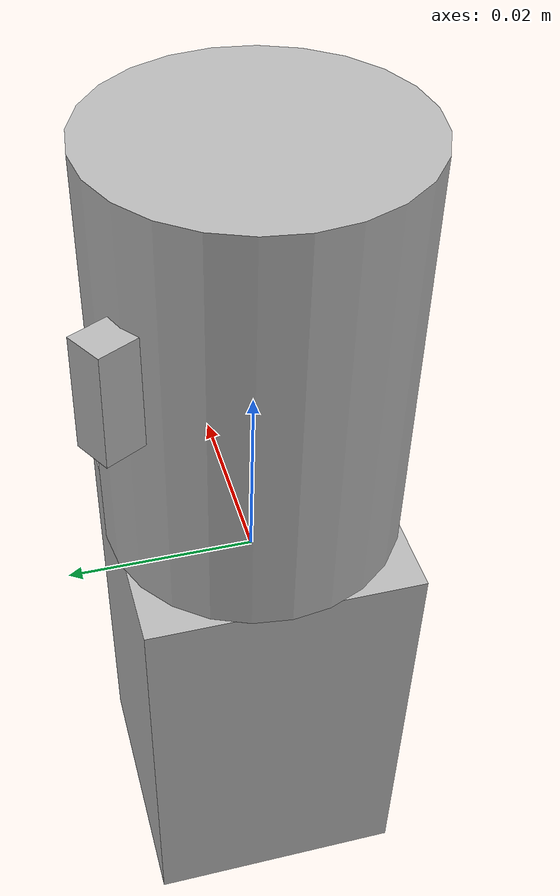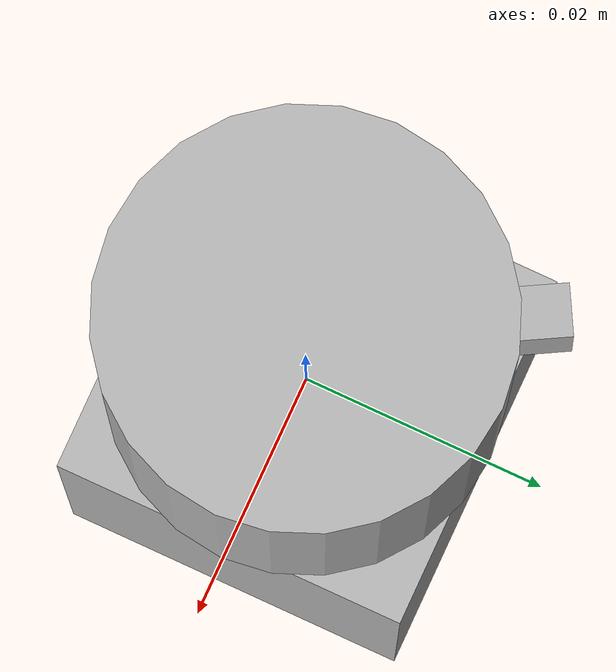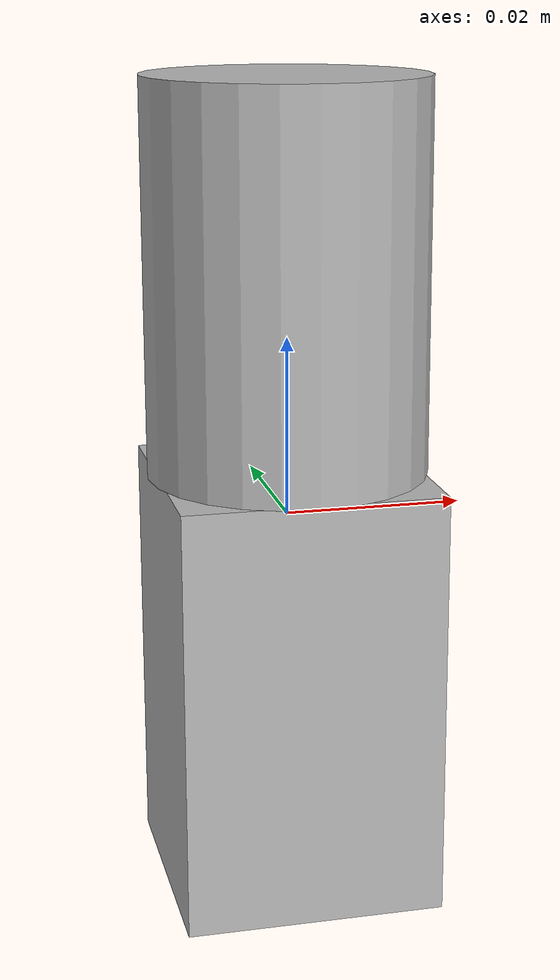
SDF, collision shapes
<?xml version="1.0" ?>
<sdf version="1.9">
  <model name="Basler Camera">
    <link name="basler_cam_link">
      <visual name="basler_cam_visual">
      <pose>0.0 0.0145 -0.02174 0.0 0.0 0.0</pose>
        <geometry>
          <mesh>
            <uri>basler_cam_visual.glb</uri>
          </mesh>
        </geometry>
      </visual>
      <collision name="135368670234ip01880201_collider_box">
        <pose>-0.0 0.0001 -0.01919 3.141593 -0.0 0.0</pose>
        <geometry>
          <box>
            <size>0.029 0.029 0.0483</size>
          </box>
        </geometry>
      </collision>
      <collision name="sphere_collider_cylinder">
        <pose>0.0 -0.000007 0.02659 0.0 0.0 0.0</pose>
        <geometry>
          <cylinder>
            <radius>0.015631</radius>
            <length>0.04326</length>
          </cylinder>
        </geometry>
      </collision>
      <collision name="59871rev000001_collider_box">
        <pose>-0.008138 0.014048 0.030947 -1.587325 0.0 -2.633954</pose>
        <geometry>
          <box>
            <size>0.003998 0.011586 0.006875</size>
          </box>
        </geometry>
      </collision>
    </link>

    <link name="sensor_link">
      <inertial>
        <mass>0.001</mass>
        <inertia>
          <ixx>0.000001</ixx>
          <ixy>0</ixy>
          <ixz>0</ixz>
          <iyy>0.000001</iyy>
          <iyz>0</iyz>
          <izz>0.000001</izz>
        </inertia>
      </inertial>
      <sensor name="camera_sensor" type="camera">
        <pose>0 0 0 1.57079632679 -1.57079632679 0</pose>
        <update_rate>20.0</update_rate>
        <camera name="camera">
        <horizontal_fov>0.8718</horizontal_fov>
          <image>
             <width>1152</width>
             <height>1024</height>
             <format>R8G8B8</format>
          </image>
          <clip>
            <near>0.07</near>
            <far>20.0</far>
          </clip>
          <lens>
            <intrinsics>
              <fx>1236.63</fx>
              <fy>1236.63</fy>
              <cx>576.0</cx>
              <cy>512.0</cy>
            </intrinsics>
          </lens>
        </camera>
      </sensor>
    </link>

    <joint name="camera_joint" type="fixed">
      <parent>basler_cam_link</parent>
      <child>sensor_link</child>
    </joint>
  </model>
</sdf>
